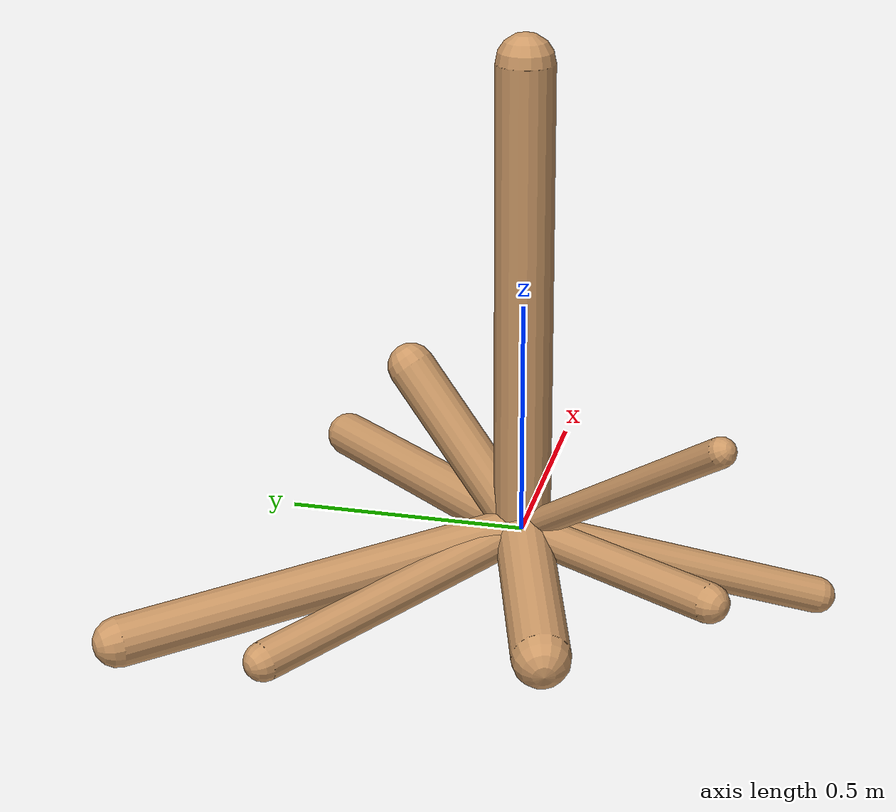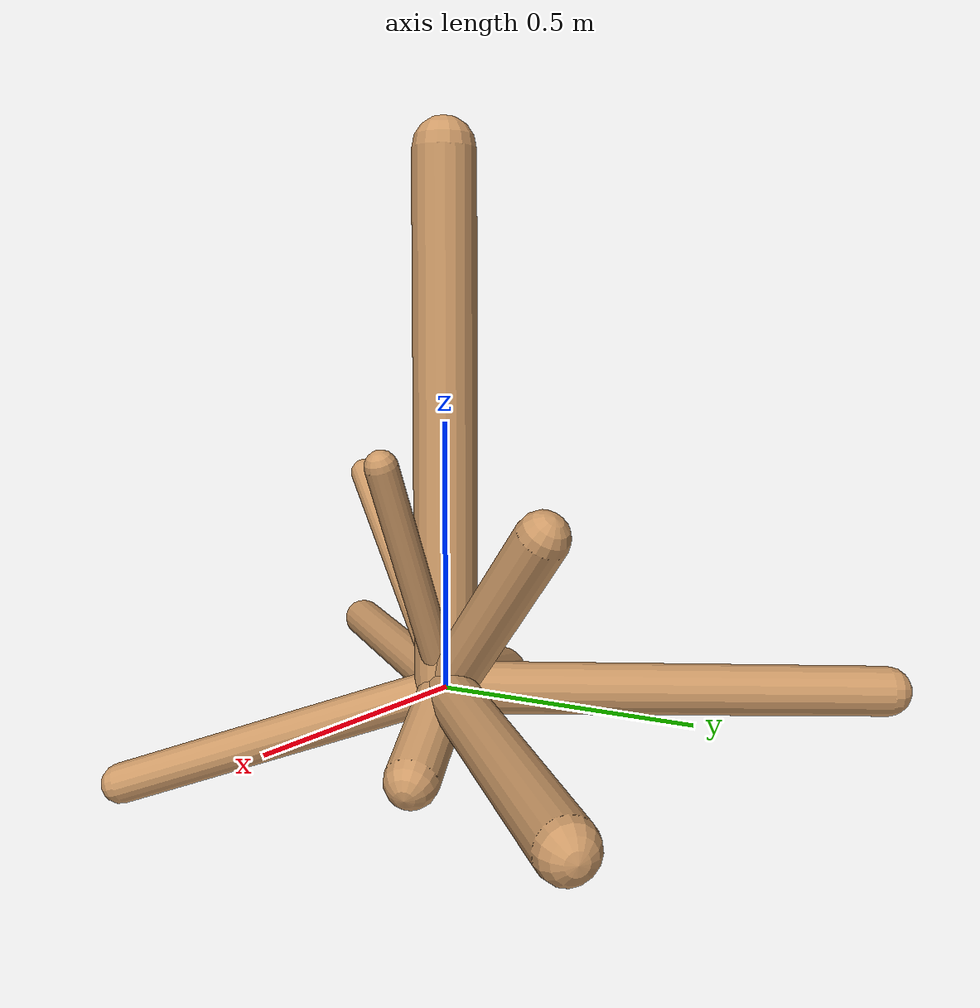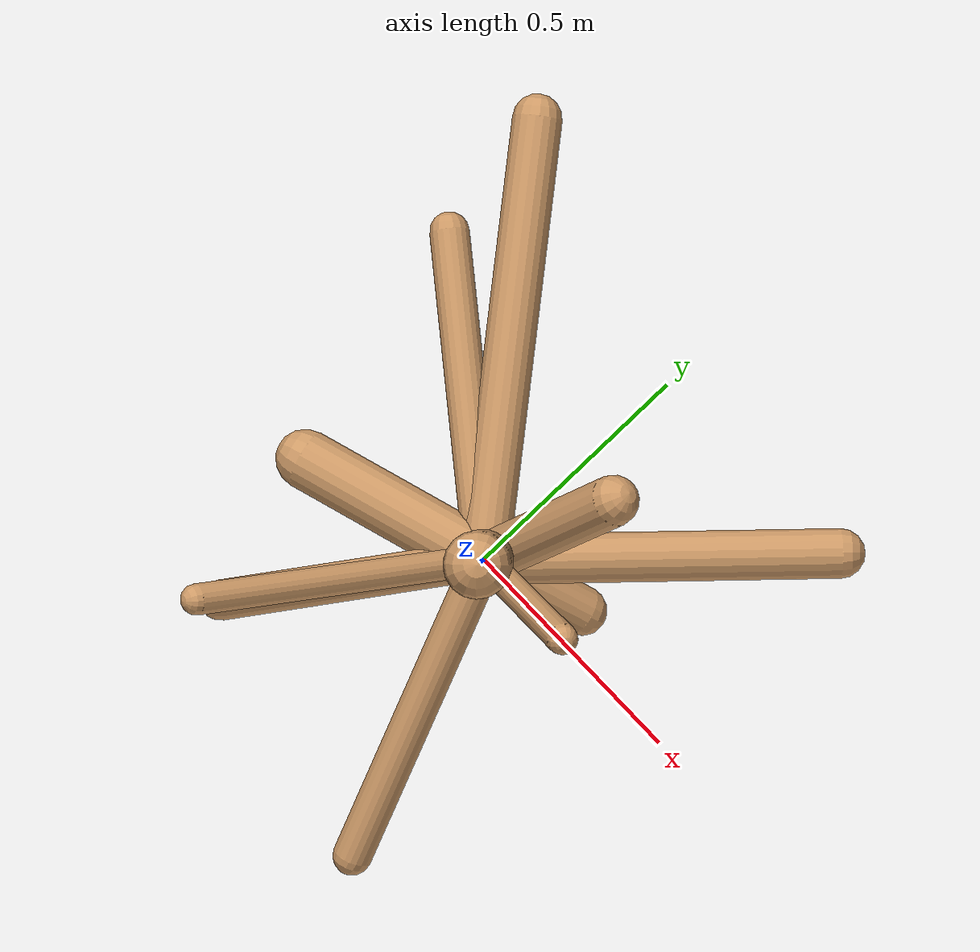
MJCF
<!--
                    joint_number: 10
                    -->
                    <mujoco model="randomrobot">
                        <compiler angle="degree" coordinate="global" inertiafromgeom="true"/>
                        <default>
                        <joint armature="0.01" damping=".1" limited="true"/>
                        <geom conaffinity="0" condim="3" contype="1" density="1000" friction="0.8 .1 .1" rgba="0.8 0.6 .4 1"/>
                        </default>
                        <option integrator="RK4" timestep="0.002"/>
                        <worldbody>
                    <body name='torso' pos='0.00 0.00 0.60'><geom fromto='0 0 0 0.00 0.00 1.00' name='torso_geom' size='0.06' type='capsule'/><inertial mass='0.3'/><body name='L0_D1' pos='0.00 0.00 0.09'><joint axis='1 0 0' name='L0_D1_joint' pos='0 0 0' range='93.98 165.27' type='hinge'/><geom fromto='0 0 0 0.21 0.01 0.43' name='L0_D1_geom' size='0.03' type='capsule'/><inertial mass='0.3'/><body name='L1_D0' pos='0.07 0.00 0.14'><joint axis='0 0 1' name='L1_D0_joint' pos='0 0 0' range='100.16 150.85' type='hinge'/><geom fromto='0 0 0 -0.52 0.40 -0.07' name='L1_D0_geom' size='0.04' type='capsule'/><inertial mass='0.3'/></body></body><body name='L2_D1' pos='0.00 0.00 0.57'><joint axis='0 1 0' name='L2_D1_joint' pos='0 0 0' range='101.15 176.17' type='hinge'/><geom fromto='0 0 0 0.21 0.07 -0.11' name='L2_D1_geom' size='0.05' type='capsule'/><inertial mass='0.3'/><body name='L3_D0' pos='0.14 0.05 -0.07'><joint axis='1 0 0' name='L3_D0_joint' pos='0 0 0' range='51.26 66.49' type='hinge'/><geom fromto='0 0 0 0.48 0.52 -0.05' name='L3_D0_geom' size='0.05' type='capsule'/><inertial mass='0.3'/></body><body name='L4_D0' pos='0.15 0.05 -0.08'><joint axis='1 0 0' name='L4_D0_joint' pos='0 0 0' range='25.63 64.87' type='hinge'/><geom fromto='0 0 0 0.09 0.26 0.31' name='L4_D0_geom' size='0.05' type='capsule'/><inertial mass='0.3'/></body><body name='L5_D0' pos='0.17 0.06 -0.09'><joint axis='1 0 0' name='L5_D0_joint' pos='0 0 0' range='22.78 38.12' type='hinge'/><geom fromto='0 0 0 -0.39 -0.12 -0.07' name='L5_D0_geom' size='0.06' type='capsule'/><inertial mass='0.3'/></body></body><body name='L6_D1' pos='0.00 0.00 0.28'><joint axis='0 1 0' name='L6_D1_joint' pos='0 0 0' range='41.16 84.30' type='hinge'/><geom fromto='0 0 0 -0.56 0.68 -0.04' name='L6_D1_geom' size='0.05' type='capsule'/><inertial mass='0.3'/><body name='L7_D0' pos='-0.16 0.20 -0.01'><joint axis='0 1 0' name='L7_D0_joint' pos='0 0 0' range='143.38 154.92' type='hinge'/><geom fromto='0 0 0 -0.30 -0.43 0.04' name='L7_D0_geom' size='0.04' type='capsule'/><inertial mass='0.3'/></body><body name='L8_D0' pos='-0.32 0.38 -0.02'><joint axis='1 0 0' name='L8_D0_joint' pos='0 0 0' range='0.14 100.10' type='hinge'/><geom fromto='0 0 0 0.25 -0.61 -0.22' name='L8_D0_geom' size='0.04' type='capsule'/><inertial mass='0.3'/></body><body name='L9_D0' pos='-0.16 0.19 -0.01'><joint axis='0 1 0' name='L9_D0_joint' pos='0 0 0' range='12.71 98.85' type='hinge'/><geom fromto='0 0 0 -0.32 -0.44 0.37' name='L9_D0_geom' size='0.03' type='capsule'/><inertial mass='0.3'/></body></body></body>
                        </worldbody>
                    </mujoco>
